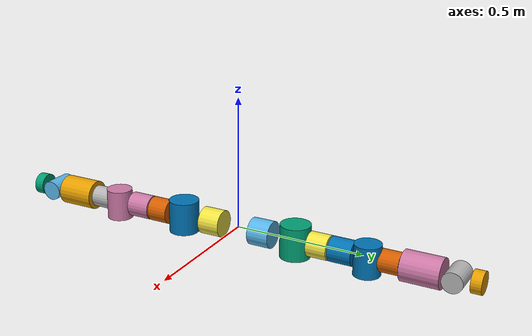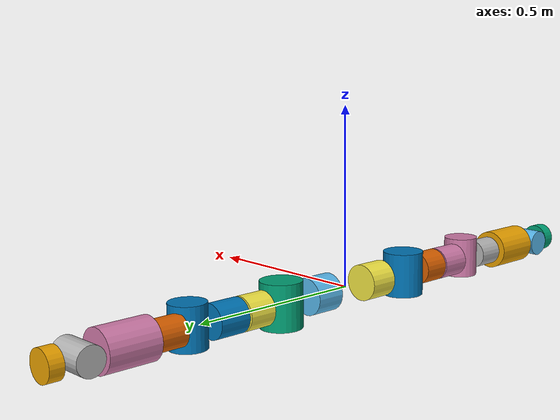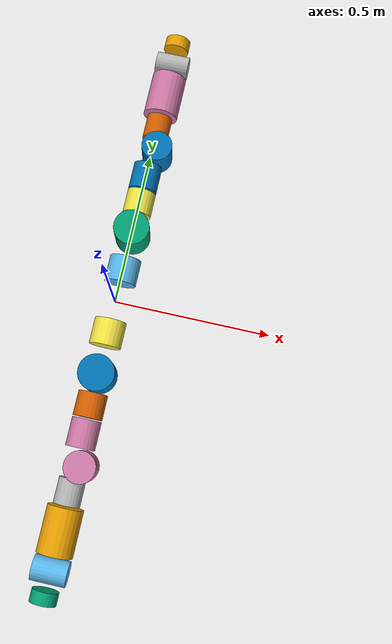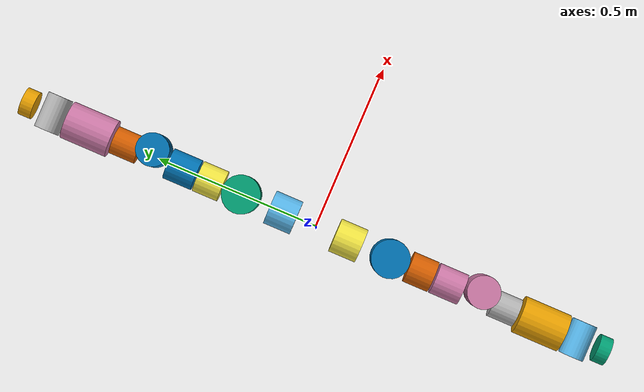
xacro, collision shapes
<?xml version="1.0" ?>
<robot name="FiveAges W2" xmlns:xacro="http://www.ros.org/wiki/xacro">
	<xacro:arg name="type" default="arms"/>
	<xacro:arg name="variant" default=""/>
	<xacro:arg name="collider" default="simple"/>

	<xacro:if value="${'$(arg type)' == 'arms'}">
		<xacro:include filename="$(find m6_ccs_description)/xacro/arm_mount.xacro"/>
		<xacro:DualArmBase/>

		<xacro:include filename="$(find m6_ccs_description)/xacro/arm.xacro"/>
		<xacro:property name="arm_skin" value="${'default' if '$(arg variant)' == 'white' else 'fiveages_w2'}"/>
		<xacro:M6_CCS name="left" skin="${arm_skin}" variant="$(arg variant)"/>
		<xacro:M6_CCS name="right" direction="-1" skin="${arm_skin}" variant="$(arg variant)"/>
	</xacro:if>

</robot>

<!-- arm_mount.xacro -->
<robot xmlns:xacro="http://www.ros.org/wiki/xacro">

	<xacro:property name="PI" value="3.1415926535897931"/>

	<xacro:macro name="DualArmBase" params="
		left_xyz:='0 0.062 0'
		right_xyz:='0 -0.062 0'
		left_rpy:=''
		right_rpy:=''
	">
		<link name="arm_base"/>
		<xacro:DualArmMount parent="arm_base"
			left_xyz="${left_xyz}" right_xyz="${right_xyz}"
			left_rpy="${left_rpy}" right_rpy="${right_rpy}"/>
	</xacro:macro>

	<xacro:macro name="DualArmMount" params="
		parent
		left_xyz:='0 0.062 0'
		right_xyz:='0 -0.062 0'
		left_rpy:=''
		right_rpy:=''
	">
		<xacro:property name="_left_rpy" value="${left_rpy if left_rpy != '' else '-'+str(PI/2)+' 0 0'}"/>
		<xacro:property name="_right_rpy" value="${right_rpy if right_rpy != '' else str(PI/2)+' 0 0'}"/>
		<joint name="left_arm_base_joint" type="fixed">
			<parent link="${parent}"/>
			<child link="left_base_link"/>
			<origin xyz="${left_xyz}" rpy="${_left_rpy}"/>
		</joint>
		<joint name="right_arm_base_joint" type="fixed">
			<parent link="${parent}"/>
			<child link="right_base_link"/>
			<origin xyz="${right_xyz}" rpy="${_right_rpy}"/>
		</joint>
	</xacro:macro>

	<xacro:macro name="LeftArmMount" params="parent left_xyz:='0 0.062 0' left_rpy:=''">
		<xacro:property name="_left_rpy" value="${left_rpy if left_rpy != '' else '-'+str(PI/2)+' 0 0'}"/>
		<joint name="left_arm_base_joint" type="fixed">
			<parent link="${parent}"/>
			<child link="left_base_link"/>
			<origin xyz="${left_xyz}" rpy="${_left_rpy}"/>
		</joint>
	</xacro:macro>

</robot>

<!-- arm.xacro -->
<robot xmlns:xacro="http://www.ros.org/wiki/xacro">
	<xacro:arg name="collider" default="convex"/>
	<!-- Shared with eefs.xacro / parent robot.xacro; planning URDF injects true via robot_common_launch -->
	<xacro:arg name="eef_fixed_joints" default="false"/>
	<xacro:property name="PI" value="3.1415926535897931"/>
	<xacro:property name="collider_type" value="$(arg collider)"/>
	<xacro:macro name="M6_CCS" params="name:='' direction:=1 skin:='default' variant:='' tcp_offset_xyz:='0 0 0' tcp_offset_rpy:='0 0 0'">
		<xacro:property name="prefix" value="${name + '_' if name else ''}"/>
		<!-- OCS2 planning URDF (eef_fixed_joints): tighten joint4 upper; viz / ros2_control keep hardware limits -->
		<xacro:property name="joint4_upper" value="${0 if '$(arg eef_fixed_joints)' == 'true' else PI*58/180}"/>

		<!-- Visual skins live under m6_ccs_description/meshes/{skin}/[sinopec]/ -->
		<xacro:property name="visual_package" value="m6_ccs_description"/>
		<xacro:property name="visual_path" value=""/>
		<xacro:if value="${skin == 'fiveages_w2' and variant == 'sinopec'}">
			<xacro:property name="visual_path" value="fiveages_w2/sinopec/"/>
		</xacro:if>
		<xacro:if value="${skin == 'fiveages_w2' and variant != 'sinopec'}">
			<xacro:property name="visual_path" value="fiveages_w2/"/>
		</xacro:if>
		<xacro:if value="${skin == 'agibot_g2'}">
			<xacro:property name="visual_path" value="agibot_g2/"/>
		</xacro:if>
		<xacro:property name="collision_package" value="m6_ccs_description"/>
		<xacro:property name="collision_path" value=""/>

		<!-- Base Link -->
		<link name="${prefix}base_link">
			<inertial>
				<origin xyz="0.00032267 4.798E-05 0.04066353"/>
				<mass value="1.1962"/>
				<inertia
						ixx="0.00107329" ixy="-1.68E-06" ixz="-1.05E-05"
						iyy="0.00107003" iyz="-3.43E-06" izz="0.00127315"/>
			</inertial>
			<visual>
				<geometry>
					<mesh filename="file://$(find m6_ccs_description)/meshes/base.glb"/>
				</geometry>
			</visual>
			<xacro:if value="${collider_type == 'convex'}">
				<collision>
					<geometry>
						<mesh filename="file://$(find m6_ccs_description)/meshes/base.glb"/>
					</geometry>
				</collision>
			</xacro:if>
			<xacro:if value="${collider_type == 'simple'}">
				<collision>
					<origin xyz="0 0 0.041832"/>
					<geometry>
						<cylinder length="0.083664" radius="0.051277"/>
					</geometry>
				</collision>
			</xacro:if>
		</link>

		<!-- Link 1 -->
		<link name="${prefix}link1">
			<inertial>
				<origin xyz="0.00002347 0.00557150 -0.03075998"/>
				<mass value="1.9705"/>
				<inertia
						ixx="0.00492293" ixy="0.00000550" ixz="0.00000193"
						iyy="0.00526513" iyz="0.00033232" izz="0.00188107"/>
			</inertial>
			<visual>
				<geometry>
					<mesh filename="file://$(find ${visual_package})/meshes/${visual_path}link1.glb"/>
				</geometry>
			</visual>
			<xacro:if value="${collider_type == 'convex'}">
				<collision>
					<geometry>
						<mesh filename="file://$(find ${collision_package})/meshes/${collision_path}link1.glb"/>
					</geometry>
				</collision>
			</xacro:if>
			<xacro:if value="${collider_type == 'simple'}">
				<collision>
					<origin rpy="${PI/2} 0 0"/>
					<geometry>
						<cylinder length="0.125958" radius="0.057588"/>
					</geometry>
				</collision>
			</xacro:if>
		</link>

		<!-- Joint 1 -->
		<joint name="${prefix}joint1" type="revolute">
			<origin xyz="0 0 0.1745" rpy="0 0 0"/>
			<parent link="${prefix}base_link"/>
			<child link="${prefix}link1"/>
			<axis xyz="0 0 1"/>
			<limit lower="-${PI*178/180}" upper="${PI*178/180}" effort="108" velocity="${PI}"/>
		</joint>

		<!-- Link 2 -->
		<link name="${prefix}link2">
			<inertial>
				<origin xyz="0.00013483 0.06170460 0.00950639"/>
				<mass value="2.24398"/>
				<inertia
						ixx="0.01194933" ixy="0.00000336" ixz="0.00000091"
						iyy="0.00361581" iyz="-0.00132804" izz="0.01098356"/>
			</inertial>
			<visual>
				<geometry>
					<mesh filename="file://$(find ${visual_package})/meshes/${visual_path}link2.glb" scale="1 1 ${direction}"/>
				</geometry>
			</visual>
			<xacro:if value="${collider_type == 'convex'}">
				<collision>
					<geometry>
						<mesh filename="file://$(find ${collision_package})/meshes/${collision_path}link2.glb"/>
					</geometry>
				</collision>
			</xacro:if>
			<xacro:if value="${collider_type == 'simple'}">
				<collision>
					<origin xyz="0 0.099087 0" rpy="${PI/2} 0 0"/>
					<geometry>
						<cylinder length="0.078386" radius="0.046717"/>
					</geometry>
				</collision>
			</xacro:if>
		</link>

		<!-- Joint 2 -->
		<joint name="${prefix}joint2" type="revolute">
			<origin rpy="${PI/2} 0 0"/>
			<parent link="${prefix}link1"/>
			<child link="${prefix}link2"/>
			<axis xyz="0 0 1"/>
			<limit lower="-${PI*118/180}" upper="${PI*118/180}" effort="108" velocity="${PI}"/>
		</joint>

		<!-- Link 3 -->
		<link name="${prefix}link3">
			<inertial>
				<origin xyz="0.00968562 0.00246599 -0.04627302"/>
				<mass value="1.9242"/>
				<inertia
						ixx="0.00718224" ixy="0.00004413" ixz="0.00089552"
						iyy="0.00762563" iyz="0.00022096" izz="0.00178597"/>
			</inertial>
			<visual>
				<geometry>
					<mesh filename="file://$(find ${visual_package})/meshes/${visual_path}link3.glb"/>
				</geometry>
			</visual>
			<xacro:if value="${collider_type == 'convex'}">
				<collision>
					<geometry>
						<mesh filename="file://$(find ${collision_package})/meshes/${collision_path}link3.glb"/>
					</geometry>
				</collision>
			</xacro:if>
			<xacro:if value="${collider_type == 'simple'}">
				<collision>
					<origin xyz="0 0 -0.098932"/>
					<geometry>
						<cylinder length="0.089056" radius="0.046717"/>
					</geometry>
				</collision>
				<collision>
					<origin xyz="0.018119 0 0" rpy="${PI/2} 0 0"/>
					<geometry>
						<cylinder length="0.117016" radius="0.049964"/>
					</geometry>
				</collision>
			</xacro:if>
		</link>

		<!-- Joint 3 -->
		<joint name="${prefix}joint3" type="revolute">
			<origin xyz="0 0.287 0" rpy="-${PI/2} 0 0"/>
			<parent link="${prefix}link2"/>
			<child link="${prefix}link3"/>
			<axis xyz="0 0 1"/>
			<limit lower="-${PI*168/180}" upper="${PI*168/180}" effort="66" velocity="${PI}"/>
		</joint>

		<!-- Link 4 -->
		<link name="${prefix}link4">
			<inertial>
				<origin xyz="0.00850411 -0.04718223 0.00941509"/>
				<mass value="1.6085"/>
				<inertia
						ixx="0.00580480" ixy="-0.00066669" ixz="-0.00012722"
						iyy="0.00223807" iyz="0.00070523" izz="0.00533060"/>
			</inertial>
			<visual>
				<geometry>
					<mesh filename="file://$(find ${visual_package})/meshes/${visual_path}link4.glb"/>
				</geometry>
			</visual>
			<xacro:if value="${collider_type == 'convex'}">
				<collision>
					<geometry>
						<mesh filename="file://$(find ${collision_package})/meshes/${collision_path}link4.glb"/>
					</geometry>
				</collision>
			</xacro:if>
			<xacro:if value="${collider_type == 'simple'}">
				<collision>
					<origin xyz="0.017721 -0.079733 0" rpy="${PI/2} 0 0"/>
					<geometry>
						<cylinder length="0.080203" radius="0.041759"/>
					</geometry>
				</collision>
			</xacro:if>
		</link>

		<!-- Joint 4 -->
		<joint name="${prefix}joint4" type="revolute">
			<origin xyz="0.018 0 0" rpy="-${PI/2} 0 ${PI}"/>
			<parent link="${prefix}link3"/>
			<child link="${prefix}link4"/>
			<axis xyz="0 0 1"/>
			<limit lower="-${PI*143/180}" upper="${joint4_upper}" effort="66" velocity="${PI}"/>
		</joint>

		<!-- Link 5 - Mirrored COM and partial inertia -->
		<link name="${prefix}link5">
			<inertial>
				<origin xyz="${direction*-0.00051127} ${direction*-0.00101064} -0.11271739"/>
				<mass value="2.0883"/>
				<inertia
						ixx="0.00626603" ixy="0.00004009" ixz="${direction*-0.00005338}"
						iyy="0.00564387" iyz="${direction*0.00006193}" izz="0.00243632"/>
			</inertial>
			<visual>
				<geometry>
					<mesh filename="file://$(find ${visual_package})/meshes/${visual_path}link5.glb" scale="1 ${direction} 1"/>
				</geometry>
			</visual>
			<xacro:if value="${collider_type == 'convex'}">
				<collision>
					<geometry>
						<mesh filename="file://$(find ${collision_package})/meshes/${collision_path}link5.glb"/>
					</geometry>
				</collision>
			</xacro:if>
			<xacro:if value="${collider_type == 'simple'}">
				<collision>
					<origin xyz="0 0 -0.117153"/>
					<geometry>
						<cylinder length="0.14268" radius="0.056747"/>
					</geometry>
				</collision>
			</xacro:if>
		</link>

		<!-- Joint 5 -->
		<joint name="${prefix}joint5" type="revolute">
			<origin xyz="0.018 -0.314 0" rpy="-${PI/2} 0 ${PI}"/>
			<parent link="${prefix}link4"/>
			<child link="${prefix}link5"/>
			<axis xyz="0 0 1"/>
			<limit lower="-${PI*168/180}" upper="${PI*168/180}" effort="18" velocity="${PI}"/>
		</joint>

		<!-- Link 6 - Partially mirrored COM and inertia -->
		<link name="${prefix}link6">
			<inertial>
				<origin xyz="0.00032659 ${direction*-0.00531336} ${direction*0.00030182}"/>
				<mass value="0.72496"/>
				<inertia
						ixx="0.00046040" ixy="${direction*-0.00000189}" ixz="${direction*-0.00000083}"
						iyy="0.00051716" iyz="-0.00000346" izz="0.00042521"/>
			</inertial>
			<visual>
				<geometry>
					<mesh filename="file://$(find ${visual_package})/meshes/${visual_path}link6.glb"/>
				</geometry>
			</visual>
			<xacro:if value="${collider_type == 'convex'}">
				<collision>
					<geometry>
						<mesh filename="file://$(find ${collision_package})/meshes/${collision_path}link6.glb"/>
					</geometry>
				</collision>
			</xacro:if>
			<xacro:if value="${collider_type == 'simple'}">
				<collision>
					<origin rpy="${PI/2} 0 0"/>
					<geometry>
						<cylinder length="0.108046" radius="0.038348"/>
					</geometry>
				</collision>
			</xacro:if>
		</link>

		<!-- Joint 6 -->
		<joint name="${prefix}joint6" type="revolute">
			<origin rpy="${PI/2} -${PI/2} 0"/>
			<parent link="${prefix}link5"/>
			<child link="${prefix}link6"/>
			<axis xyz="0 0 1"/>
			<limit lower="-${PI*58/180}" upper="${PI*58/180}" effort="18" velocity="${PI}"/>
		</joint>

		<!-- Link 7 -->
		<link name="${prefix}link7">
			<inertial>
				<origin xyz="-0.00009108 -0.03153255 0.00889371"/>
				<mass value="0.68606"/>
				<inertia
						ixx="0.00173687" ixy="-0.00000345" ixz="-0.00000116"
						iyy="0.00089035" iyz="0.00030680" izz="0.00139406"/>
			</inertial>
			<visual>
				<geometry>
					<xacro:if value="${direction == 1}">
						<mesh filename="file://$(find ${visual_package})/meshes/${visual_path}link7.glb"/>
					</xacro:if>
					<xacro:if value="${direction == -1}">
						<mesh filename="file://$(find ${visual_package})/meshes/${visual_path}link7_r.glb"/>
					</xacro:if>
				</geometry>
			</visual>
			<xacro:if value="${collider_type == 'convex'}">
				<collision>
					<geometry>
						<mesh filename="file://$(find ${collision_package})/meshes/${collision_path}link7.glb"/>
					</geometry>
				</collision>
			</xacro:if>
			<xacro:if value="${collider_type == 'simple'}">
				<collision>
					<origin xyz="0 -0.075732 0" rpy="${PI/2} 0 0"/>
					<geometry>
						<cylinder length="0.038392" radius="0.041707"/>
					</geometry>
				</collision>
			</xacro:if>
		</link>

		<!-- Joint 7 -->
		<joint name="${prefix}joint7" type="revolute">
			<origin rpy="${PI/2} -${PI/2} 0"/>
			<parent link="${prefix}link6"/>
			<child link="${prefix}link7"/>
			<axis xyz="0 0 1"/>
			<limit lower="-${PI*78/180}" upper="${PI*78/180}" effort="18" velocity="${PI}"/>
		</joint>

		<link name="${prefix}tcp"/>
		<joint name="${prefix}tcp_joint" type="fixed">
			<origin rpy="${PI/2} -${PI/2} 0" xyz="0 -0.095 0"/>
			<parent link="${prefix}link7"/>
			<child link="${prefix}tcp"/>
		</joint>

		<!-- Virtual tool frame for planning/control. It is a sibling of the physical
		     end-effector subtree, so changing the offset never moves hand/gripper geometry. -->
		<link name="${prefix}tcp_offset"/>
		<joint name="${prefix}tcp_offset_joint" type="fixed">
			<origin xyz="${tcp_offset_xyz}" rpy="${tcp_offset_rpy}"/>
			<parent link="${prefix}tcp"/>
			<child link="${prefix}tcp_offset"/>
		</joint>

	</xacro:macro>
</robot>
